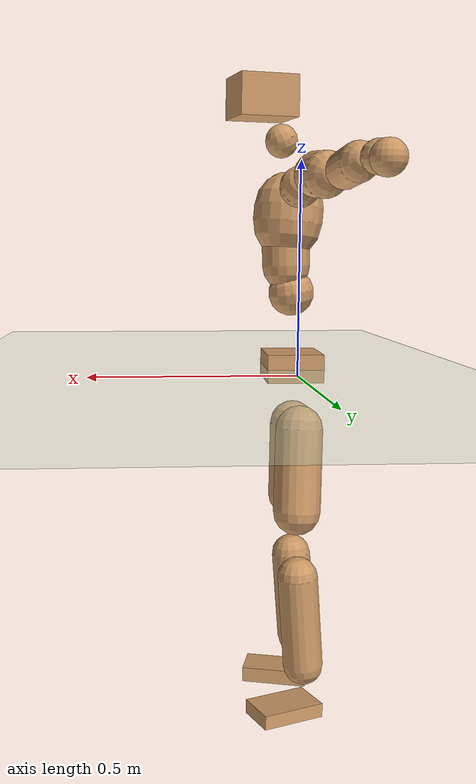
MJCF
<mujoco model="humanoid">
  <compiler coordinate="local" angle="radian"/>
  <default>
    <joint damping="0.0" armature="0.01" stiffness="0.0" limited="true"/>
    <geom conaffinity="1" condim="3" contype="7" margin="0.001" rgba="0.8 0.6 .4 1"/>
  </default>
  <asset>
    <texture type="skybox" builtin="gradient" rgb1=".4 .5 .6" rgb2="0 0 0" width="100" height="100"/>
    <texture builtin="flat" height="1278" mark="cross" markrgb="1 1 1" name="texgeom" random="0.01" rgb1="0.8 0.6 0.4" rgb2="0.8 0.6 0.4" type="cube" width="127"/>
    <texture builtin="checker" height="100" name="texplane" rgb1="0 0 0" rgb2="0.8 0.8 0.8" type="2d" width="100"/>
    <material name="MatPlane" reflectance="0.5" shininess="1" specular="1" texrepeat="60 60" texture="texplane"/>
    <material name="geom" texture="texgeom" texuniform="true"/>
  </asset>
  <worldbody>
    <light cutoff="100" diffuse="1 1 1" dir="-0 0 -1.3" directional="true" exponent="1" pos="0 0 1.3" specular=".1 .1 .1"/>
    <geom conaffinity="1" condim="3" name="floor" pos="0 0 0" rgba="0.8 0.9 0.8 1" size="100 100 .2" type="plane" material="MatPlane"/>
    <body name="Pelvis" pos="-0.0059 -0.229 0.0086">
      <freejoint name="Pelvis"/>
      <geom type="box" contype="1" conaffinity="1" density="5359.374899" pos="-0.0137 0.0004 -0.0086" size="0.0714 0.0955 0.0356" quat="0.9999 0.0000 0.0000 -0.0131" name="Pelvis"/>
      <body name="L_Hip" pos="-0.0301 0.0508 -0.0777">
        <joint name="L_Hip_x" type="hinge" pos="0 0 0" axis="1 0 0" stiffness="1600" damping="160" armature="0.02" range="-180.0000 180.0000"/>
        <joint name="L_Hip_y" type="hinge" pos="0 0 0" axis="0 1 0" stiffness="1600" damping="160" armature="0.02" range="-180.0000 180.0000"/>
        <joint name="L_Hip_z" type="hinge" pos="0 0 0" axis="0 0 1" stiffness="1600" damping="160" armature="0.02" range="-180.0000 180.0000"/>
        <geom type="capsule" contype="1" conaffinity="1" density="2040.816327" size="0.0609" fromto="0.0030 0.0115 -0.0901 0.0102 0.0387 -0.3035" name="L_Hip"/>
        <body name="L_Knee" pos="0.0132 0.0502 -0.3936">
          <joint name="L_Knee_x" type="hinge" pos="0 0 0" axis="1 0 0" stiffness="1600" damping="160" armature="0.02" range="-180.0000 180.0000"/>
          <joint name="L_Knee_y" type="hinge" pos="0 0 0" axis="0 1 0" stiffness="1600" damping="160" armature="0.02" range="-180.0000 180.0000"/>
          <joint name="L_Knee_z" type="hinge" pos="0 0 0" axis="0 0 1" stiffness="1600" damping="160" armature="0.02" range="-180.0000 180.0000"/>
          <geom type="capsule" contype="1" conaffinity="1" density="1234.567901" size="0.0524" fromto="-0.0064 -0.0022 -0.0821 -0.0254 -0.0090 -0.3280" name="L_Knee"/>
          <body name="L_Ankle" pos="-0.0318 -0.0112 -0.4102">
            <joint name="L_Ankle_x" type="hinge" pos="0 0 0" axis="1 0 0" stiffness="1600" damping="160" armature="0.02" range="-180.0000 180.0000"/>
            <joint name="L_Ankle_y" type="hinge" pos="0 0 0" axis="0 1 0" stiffness="1600" damping="160" armature="0.02" range="-180.0000 180.0000"/>
            <joint name="L_Ankle_z" type="hinge" pos="0 0 0" axis="0 0 1" stiffness="1600" damping="160" armature="0.02" range="-180.0000 180.0000"/>
            <geom type="box" contype="1" conaffinity="1" density="1000.00003" pos="0.0581 0.0234 -0.0298" size="0.0855 0.0534 0.0185" quat="0.9817 0.0000 0.0000 0.1905" name="L_Ankle"/>
            <body name="L_Toe" pos="0.1161 0.0468 -0.0597">
              <joint name="L_Toe_x" type="hinge" pos="0 0 0" axis="1 0 0" stiffness="1000" damping="100" armature="0.02" range="-180.0000 180.0000"/>
              <joint name="L_Toe_y" type="hinge" pos="0 0 0" axis="0 1 0" stiffness="1000" damping="100" armature="0.02" range="-180.0000 180.0000"/>
              <joint name="L_Toe_z" type="hinge" pos="0 0 0" axis="0 0 1" stiffness="1000" damping="100" armature="0.02" range="-180.0000 180.0000"/>
              <geom type="box" contype="1" conaffinity="1" density="7450916.826301" pos="0.0000 0.0000 0.0313" size="0.001 0.0026 0.001" quat="0.9808 0.0000 0.0000 0.1948" name="L_Toe"/>
            </body>
          </body>
        </body>
      </body>
      <body name="R_Hip" pos="-0.0284 -0.0524 -0.0838">
        <joint name="R_Hip_x" type="hinge" pos="0 0 0" axis="1 0 0" stiffness="1600" damping="160" armature="0.02" range="-180.0000 180.0000"/>
        <joint name="R_Hip_y" type="hinge" pos="0 0 0" axis="0 1 0" stiffness="1600" damping="160" armature="0.02" range="-180.0000 180.0000"/>
        <joint name="R_Hip_z" type="hinge" pos="0 0 0" axis="0 0 1" stiffness="1600" damping="160" armature="0.02" range="-180.0000 180.0000"/>
        <geom type="capsule" contype="1" conaffinity="1" density="2040.816327" size="0.0596" fromto="-0.0003 -0.0105 -0.0889 -0.0011 -0.0349 -0.2957" name="R_Hip"/>
        <body name="R_Knee" pos="-0.0014 -0.0455 -0.3846">
          <joint name="R_Knee_x" type="hinge" pos="0 0 0" axis="1 0 0" stiffness="1600" damping="160" armature="0.02" range="-180.0000 180.0000"/>
          <joint name="R_Knee_y" type="hinge" pos="0 0 0" axis="0 1 0" stiffness="1600" damping="160" armature="0.02" range="-180.0000 180.0000"/>
          <joint name="R_Knee_z" type="hinge" pos="0 0 0" axis="0 0 1" stiffness="1600" damping="160" armature="0.02" range="-180.0000 180.0000"/>
          <geom type="capsule" contype="1" conaffinity="1" density="1234.567901" size="0.0527" fromto="-0.0062 0.0036 -0.0824 -0.0240 0.0139 -0.3198" name="R_Knee"/>
          <body name="R_Ankle" pos="-0.0302 0.0175 -0.4022">
            <joint name="R_Ankle_x" type="hinge" pos="0 0 0" axis="1 0 0" stiffness="1600" damping="160" armature="0.02" range="-180.0000 180.0000"/>
            <joint name="R_Ankle_y" type="hinge" pos="0 0 0" axis="0 1 0" stiffness="1600" damping="160" armature="0.02" range="-180.0000 180.0000"/>
            <joint name="R_Ankle_z" type="hinge" pos="0 0 0" axis="0 0 1" stiffness="1600" damping="160" armature="0.02" range="-180.0000 180.0000"/>
            <geom type="box" contype="1" conaffinity="1" density="1000.000023" pos="0.0630 -0.0172 -0.0299" size="0.088 0.0489 0.0201" quat="0.9912 0.0000 0.0000 -0.1326" name="R_Ankle"/>
            <body name="R_Toe" pos="0.1259 -0.0343 -0.0598">
              <joint name="R_Toe_x" type="hinge" pos="0 0 0" axis="1 0 0" stiffness="1000" damping="100" armature="0.02" range="-180.0000 180.0000"/>
              <joint name="R_Toe_y" type="hinge" pos="0 0 0" axis="0 1 0" stiffness="1000" damping="100" armature="0.02" range="-180.0000 180.0000"/>
              <joint name="R_Toe_z" type="hinge" pos="0 0 0" axis="0 0 1" stiffness="1000" damping="100" armature="0.02" range="-180.0000 180.0000"/>
              <geom type="box" contype="1" conaffinity="1" density="8394878.358398" pos="0.0000 0.0000 0.0329" size="0.0009 0.0024 0.0012" quat="0.9924 0.0000 0.0000 -0.1234" name="R_Toe"/>
            </body>
          </body>
        </body>
      </body>
      <body name="Torso" pos="-0.024 0.0038 0.1096">
        <joint name="Torso_x" type="hinge" pos="0 0 0" axis="1 0 0" stiffness="2000" damping="200" armature="0.02" range="-180.0000 180.0000"/>
        <joint name="Torso_y" type="hinge" pos="0 0 0" axis="0 1 0" stiffness="2000" damping="200" armature="0.02" range="-180.0000 180.0000"/>
        <joint name="Torso_z" type="hinge" pos="0 0 0" axis="0 0 1" stiffness="2000" damping="200" armature="0.02" range="-180.0000 180.0000"/>
        <geom type="capsule" contype="1" conaffinity="1" density="2040.816327" size="0.0585" fromto="0.0142 0.0021 0.0698 0.0146 0.0022 0.0718" name="Torso"/>
        <body name="Spine" pos="0.0289 0.0043 0.1416">
          <joint name="Spine_x" type="hinge" pos="0 0 0" axis="1 0 0" stiffness="2000" damping="200" armature="0.02" range="-180.0000 180.0000"/>
          <joint name="Spine_y" type="hinge" pos="0 0 0" axis="0 1 0" stiffness="2000" damping="200" armature="0.02" range="-180.0000 180.0000"/>
          <joint name="Spine_z" type="hinge" pos="0 0 0" axis="0 0 1" stiffness="2000" damping="200" armature="0.02" range="-180.0000 180.0000"/>
          <geom type="capsule" contype="1" conaffinity="1" density="2040.816327" size="0.0609" fromto="0.0017 -0.0001 0.0609 -0.0001 0.0000 -0.0033" name="Spine"/>
          <body name="Chest" pos="0.0016 -0.0001 0.0576">
            <joint name="Chest_x" type="hinge" pos="0 0 0" axis="1 0 0" stiffness="2000" damping="200" armature="0.02" range="-180.0000 180.0000"/>
            <joint name="Chest_y" type="hinge" pos="0 0 0" axis="0 1 0" stiffness="2000" damping="200" armature="0.02" range="-180.0000 180.0000"/>
            <joint name="Chest_z" type="hinge" pos="0 0 0" axis="0 0 1" stiffness="2000" damping="200" armature="0.02" range="-180.0000 180.0000"/>
            <geom type="capsule" contype="1" conaffinity="1" density="2040.816327" size="0.0885" fromto="-0.0079 -0.0054 0.0880 -0.0043 -0.0029 0.0473" name="Chest"/>
            <body name="Neck" pos="-0.0126 -0.0147 0.1998">
              <joint name="Neck_x" type="hinge" pos="0 0 0" axis="1 0 0" stiffness="1000" damping="100" armature="0.02" range="-180.0000 180.0000"/>
              <joint name="Neck_y" type="hinge" pos="0 0 0" axis="0 1 0" stiffness="1000" damping="100" armature="0.02" range="-180.0000 180.0000"/>
              <joint name="Neck_z" type="hinge" pos="0 0 0" axis="0 0 1" stiffness="1000" damping="100" armature="0.02" range="-180.0000 180.0000"/>
              <geom type="capsule" contype="1" conaffinity="1" density="1000" size="0.0414" fromto="0.0249 0.0052 0.0502 0.0257 0.0054 0.0520" name="Neck"/>
              <body name="Head" pos="0.0506 0.0106 0.1023">
                <joint name="Head_x" type="hinge" pos="0 0 0" axis="1 0 0" stiffness="1000" damping="100" armature="0.02" range="-180.0000 180.0000"/>
                <joint name="Head_y" type="hinge" pos="0 0 0" axis="0 1 0" stiffness="1000" damping="100" armature="0.02" range="-180.0000 180.0000"/>
                <joint name="Head_z" type="hinge" pos="0 0 0" axis="0 0 1" stiffness="1000" damping="100" armature="0.02" range="-180.0000 180.0000"/>
                <geom type="box" contype="1" conaffinity="1" density="2250.000268" pos="0.0263 0.0063 0.0521" size="0.0756 0.0601 0.0507" quat="0.9931 0.0000 0.0000 0.1172" name="Head"/>
              </body>
            </body>
            <body name="L_Thorax" pos="-0.0075 0.0682 0.1046">
              <joint name="L_Thorax_x" type="hinge" pos="0 0 0" axis="1 0 0" stiffness="1000" damping="100" armature="0.02" range="-180.0000 180.0000"/>
              <joint name="L_Thorax_y" type="hinge" pos="0 0 0" axis="0 1 0" stiffness="1000" damping="100" armature="0.02" range="-180.0000 180.0000"/>
              <joint name="L_Thorax_z" type="hinge" pos="0 0 0" axis="0 0 1" stiffness="1000" damping="100" armature="0.02" range="-180.0000 180.0000"/>
              <geom type="capsule" contype="1" conaffinity="1" density="1000" size="0.0497" fromto="-0.0065 0.0583 0.0243 -0.0067 0.0601 0.0250" name="L_Thorax"/>
              <body name="L_Shoulder" pos="-0.0132 0.1184 0.0493">
                <joint name="L_Shoulder_x" type="hinge" pos="0 0 0" axis="1 0 0" stiffness="1000" damping="100" armature="0.02" range="-720.0000 720.0000"/>
                <joint name="L_Shoulder_y" type="hinge" pos="0 0 0" axis="0 1 0" stiffness="1000" damping="100" armature="0.02" range="-720.0000 720.0000"/>
                <joint name="L_Shoulder_z" type="hinge" pos="0 0 0" axis="0 0 1" stiffness="1000" damping="100" armature="0.02" range="-720.0000 720.0000"/>
                <geom type="capsule" contype="1" conaffinity="1" density="1000" size="0.0521" fromto="-0.0067 0.0815 -0.0069 -0.0135 0.1643 -0.0140" name="L_Shoulder"/>
                <body name="L_Elbow" pos="-0.0202 0.2458 -0.0209">
                  <joint name="L_Elbow_x" type="hinge" pos="0 0 0" axis="1 0 0" stiffness="1000" damping="100" armature="0.02" range="-720.0000 720.0000"/>
                  <joint name="L_Elbow_y" type="hinge" pos="0 0 0" axis="0 1 0" stiffness="1000" damping="100" armature="0.02" range="-720.0000 720.0000"/>
                  <joint name="L_Elbow_z" type="hinge" pos="0 0 0" axis="0 0 1" stiffness="1000" damping="100" armature="0.02" range="-720.0000 720.0000"/>
                  <geom type="capsule" contype="1" conaffinity="1" density="1000" size="0.04" fromto="-0.0017 0.0699 0.0035 -0.0045 0.1845 0.0092" name="L_Elbow"/>
                  <body name="L_Wrist" pos="-0.0062 0.2544 0.0127">
                    <joint name="L_Wrist_x" type="hinge" pos="0 0 0" axis="1 0 0" stiffness="600" damping="60" armature="0.02" range="-180.0000 180.0000"/>
                    <joint name="L_Wrist_y" type="hinge" pos="0 0 0" axis="0 1 0" stiffness="600" damping="60" armature="0.02" range="-180.0000 180.0000"/>
                    <joint name="L_Wrist_z" type="hinge" pos="0 0 0" axis="0 0 1" stiffness="600" damping="60" armature="0.02" range="-180.0000 180.0000"/>
                    <geom type="capsule" contype="1" conaffinity="1" density="1000" size="0.0325" fromto="-0.0074 0.0408 -0.0053 -0.0078 0.0428 -0.0056" name="L_Wrist"/>
                    <body name="L_Hand" pos="-0.0152 0.0836 -0.0108">
                      <joint name="L_Hand_x" type="hinge" pos="0 0 0" axis="1 0 0" stiffness="600" damping="60" armature="0.02" range="-180.0000 180.0000"/>
                      <joint name="L_Hand_y" type="hinge" pos="0 0 0" axis="0 1 0" stiffness="600" damping="60" armature="0.02" range="-180.0000 180.0000"/>
                      <joint name="L_Hand_z" type="hinge" pos="0 0 0" axis="0 0 1" stiffness="600" damping="60" armature="0.02" range="-180.0000 180.0000"/>
                      <geom type="sphere" contype="1" conaffinity="1" density="1000" size="0.0343" pos="0.0000 0.0000 0.0000" name="L_Hand"/>
                    </body>
                  </body>
                </body>
              </body>
            </body>
            <body name="R_Thorax" pos="-0.0165 -0.0785 0.1015">
              <joint name="R_Thorax_x" type="hinge" pos="0 0 0" axis="1 0 0" stiffness="1000" damping="100" armature="0.02" range="-180.0000 180.0000"/>
              <joint name="R_Thorax_y" type="hinge" pos="0 0 0" axis="0 1 0" stiffness="1000" damping="100" armature="0.02" range="-180.0000 180.0000"/>
              <joint name="R_Thorax_z" type="hinge" pos="0 0 0" axis="0 0 1" stiffness="1000" damping="100" armature="0.02" range="-180.0000 180.0000"/>
              <geom type="capsule" contype="1" conaffinity="1" density="1000" size="0.0494" fromto="-0.0024 -0.0529 0.0248 -0.0024 -0.0547 0.0257" name="R_Thorax"/>
              <body name="R_Shoulder" pos="-0.0048 -0.1076 0.0505">
                <joint name="R_Shoulder_x" type="hinge" pos="0 0 0" axis="1 0 0" stiffness="1000" damping="100" armature="0.02" range="-720.0000 720.0000"/>
                <joint name="R_Shoulder_y" type="hinge" pos="0 0 0" axis="0 1 0" stiffness="1000" damping="100" armature="0.02" range="-720.0000 720.0000"/>
                <joint name="R_Shoulder_z" type="hinge" pos="0 0 0" axis="0 0 1" stiffness="1000" damping="100" armature="0.02" range="-720.0000 720.0000"/>
                <geom type="capsule" contype="1" conaffinity="1" density="1000" size="0.0524" fromto="-0.0100 -0.0814 -0.0076 -0.0200 -0.1635 -0.0152" name="R_Shoulder"/>
                <body name="R_Elbow" pos="-0.03 -0.2449 -0.0228">
                  <joint name="R_Elbow_x" type="hinge" pos="0 0 0" axis="1 0 0" stiffness="1000" damping="100" armature="0.02" range="-720.0000 720.0000"/>
                  <joint name="R_Elbow_y" type="hinge" pos="0 0 0" axis="0 1 0" stiffness="1000" damping="100" armature="0.02" range="-720.0000 720.0000"/>
                  <joint name="R_Elbow_z" type="hinge" pos="0 0 0" axis="0 0 1" stiffness="1000" damping="100" armature="0.02" range="-720.0000 720.0000"/>
                  <geom type="capsule" contype="1" conaffinity="1" density="1000" size="0.0397" fromto="-0.0007 -0.0697 0.0013 -0.0020 -0.1863 0.0034" name="R_Elbow"/>
                  <body name="R_Wrist" pos="-0.0027 -0.256 0.0046">
                    <joint name="R_Wrist_x" type="hinge" pos="0 0 0" axis="1 0 0" stiffness="600" damping="60" armature="0.02" range="-180.0000 180.0000"/>
                    <joint name="R_Wrist_y" type="hinge" pos="0 0 0" axis="0 1 0" stiffness="600" damping="60" armature="0.02" range="-180.0000 180.0000"/>
                    <joint name="R_Wrist_z" type="hinge" pos="0 0 0" axis="0 0 1" stiffness="600" damping="60" armature="0.02" range="-180.0000 180.0000"/>
                    <geom type="capsule" contype="1" conaffinity="1" density="1000" size="0.0318" fromto="-0.0049 -0.0403 -0.0040 -0.0051 -0.0423 -0.0042" name="R_Wrist"/>
                    <body name="R_Hand" pos="-0.01 -0.0826 -0.0081">
                      <joint name="R_Hand_x" type="hinge" pos="0 0 0" axis="1 0 0" stiffness="600" damping="60" armature="0.02" range="-180.0000 180.0000"/>
                      <joint name="R_Hand_y" type="hinge" pos="0 0 0" axis="0 1 0" stiffness="600" damping="60" armature="0.02" range="-180.0000 180.0000"/>
                      <joint name="R_Hand_z" type="hinge" pos="0 0 0" axis="0 0 1" stiffness="600" damping="60" armature="0.02" range="-180.0000 180.0000"/>
                      <geom type="sphere" contype="1" conaffinity="1" density="1000" size="0.0335" pos="0.0000 0.0000 0.0000" name="R_Hand"/>
                    </body>
                  </body>
                </body>
              </body>
            </body>
          </body>
        </body>
      </body>
    </body>
  </worldbody>
  <actuator>
    <motor name="L_Hip_x" joint="L_Hip_x" gear="500"/>
    <motor name="L_Hip_y" joint="L_Hip_y" gear="500"/>
    <motor name="L_Hip_z" joint="L_Hip_z" gear="500"/>
    <motor name="L_Knee_x" joint="L_Knee_x" gear="500"/>
    <motor name="L_Knee_y" joint="L_Knee_y" gear="500"/>
    <motor name="L_Knee_z" joint="L_Knee_z" gear="500"/>
    <motor name="L_Ankle_x" joint="L_Ankle_x" gear="500"/>
    <motor name="L_Ankle_y" joint="L_Ankle_y" gear="500"/>
    <motor name="L_Ankle_z" joint="L_Ankle_z" gear="500"/>
    <motor name="L_Toe_x" joint="L_Toe_x" gear="500"/>
    <motor name="L_Toe_y" joint="L_Toe_y" gear="500"/>
    <motor name="L_Toe_z" joint="L_Toe_z" gear="500"/>
    <motor name="R_Hip_x" joint="R_Hip_x" gear="500"/>
    <motor name="R_Hip_y" joint="R_Hip_y" gear="500"/>
    <motor name="R_Hip_z" joint="R_Hip_z" gear="500"/>
    <motor name="R_Knee_x" joint="R_Knee_x" gear="500"/>
    <motor name="R_Knee_y" joint="R_Knee_y" gear="500"/>
    <motor name="R_Knee_z" joint="R_Knee_z" gear="500"/>
    <motor name="R_Ankle_x" joint="R_Ankle_x" gear="500"/>
    <motor name="R_Ankle_y" joint="R_Ankle_y" gear="500"/>
    <motor name="R_Ankle_z" joint="R_Ankle_z" gear="500"/>
    <motor name="R_Toe_x" joint="R_Toe_x" gear="500"/>
    <motor name="R_Toe_y" joint="R_Toe_y" gear="500"/>
    <motor name="R_Toe_z" joint="R_Toe_z" gear="500"/>
    <motor name="Torso_x" joint="Torso_x" gear="500"/>
    <motor name="Torso_y" joint="Torso_y" gear="500"/>
    <motor name="Torso_z" joint="Torso_z" gear="500"/>
    <motor name="Spine_x" joint="Spine_x" gear="500"/>
    <motor name="Spine_y" joint="Spine_y" gear="500"/>
    <motor name="Spine_z" joint="Spine_z" gear="500"/>
    <motor name="Chest_x" joint="Chest_x" gear="500"/>
    <motor name="Chest_y" joint="Chest_y" gear="500"/>
    <motor name="Chest_z" joint="Chest_z" gear="500"/>
    <motor name="Neck_x" joint="Neck_x" gear="500"/>
    <motor name="Neck_y" joint="Neck_y" gear="500"/>
    <motor name="Neck_z" joint="Neck_z" gear="500"/>
    <motor name="Head_x" joint="Head_x" gear="500"/>
    <motor name="Head_y" joint="Head_y" gear="500"/>
    <motor name="Head_z" joint="Head_z" gear="500"/>
    <motor name="L_Thorax_x" joint="L_Thorax_x" gear="500"/>
    <motor name="L_Thorax_y" joint="L_Thorax_y" gear="500"/>
    <motor name="L_Thorax_z" joint="L_Thorax_z" gear="500"/>
    <motor name="L_Shoulder_x" joint="L_Shoulder_x" gear="500"/>
    <motor name="L_Shoulder_y" joint="L_Shoulder_y" gear="500"/>
    <motor name="L_Shoulder_z" joint="L_Shoulder_z" gear="500"/>
    <motor name="L_Elbow_x" joint="L_Elbow_x" gear="500"/>
    <motor name="L_Elbow_y" joint="L_Elbow_y" gear="500"/>
    <motor name="L_Elbow_z" joint="L_Elbow_z" gear="500"/>
    <motor name="L_Wrist_x" joint="L_Wrist_x" gear="500"/>
    <motor name="L_Wrist_y" joint="L_Wrist_y" gear="500"/>
    <motor name="L_Wrist_z" joint="L_Wrist_z" gear="500"/>
    <motor name="L_Hand_x" joint="L_Hand_x" gear="500"/>
    <motor name="L_Hand_y" joint="L_Hand_y" gear="500"/>
    <motor name="L_Hand_z" joint="L_Hand_z" gear="500"/>
    <motor name="R_Thorax_x" joint="R_Thorax_x" gear="500"/>
    <motor name="R_Thorax_y" joint="R_Thorax_y" gear="500"/>
    <motor name="R_Thorax_z" joint="R_Thorax_z" gear="500"/>
    <motor name="R_Shoulder_x" joint="R_Shoulder_x" gear="500"/>
    <motor name="R_Shoulder_y" joint="R_Shoulder_y" gear="500"/>
    <motor name="R_Shoulder_z" joint="R_Shoulder_z" gear="500"/>
    <motor name="R_Elbow_x" joint="R_Elbow_x" gear="500"/>
    <motor name="R_Elbow_y" joint="R_Elbow_y" gear="500"/>
    <motor name="R_Elbow_z" joint="R_Elbow_z" gear="500"/>
    <motor name="R_Wrist_x" joint="R_Wrist_x" gear="500"/>
    <motor name="R_Wrist_y" joint="R_Wrist_y" gear="500"/>
    <motor name="R_Wrist_z" joint="R_Wrist_z" gear="500"/>
    <motor name="R_Hand_x" joint="R_Hand_x" gear="500"/>
    <motor name="R_Hand_y" joint="R_Hand_y" gear="500"/>
    <motor name="R_Hand_z" joint="R_Hand_z" gear="500"/>
  </actuator>
  <contact>
    <exclude body1="Torso" body2="Chest"/>
    <exclude body1="Head" body2="Chest"/>
    <exclude body1="R_Knee" body2="R_Toe"/>
    <exclude body1="R_Knee" body2="L_Ankle"/>
    <exclude body1="R_Knee" body2="L_Toe"/>
    <exclude body1="L_Knee" body2="L_Toe"/>
    <exclude body1="L_Knee" body2="R_Ankle"/>
    <exclude body1="L_Knee" body2="R_Toe"/>
    <exclude body1="L_Shoulder" body2="Chest"/>
    <exclude body1="R_Shoulder" body2="Chest"/>
  </contact>
  <sensor/>
  <size njmax="700" nconmax="700"/>
</mujoco>
